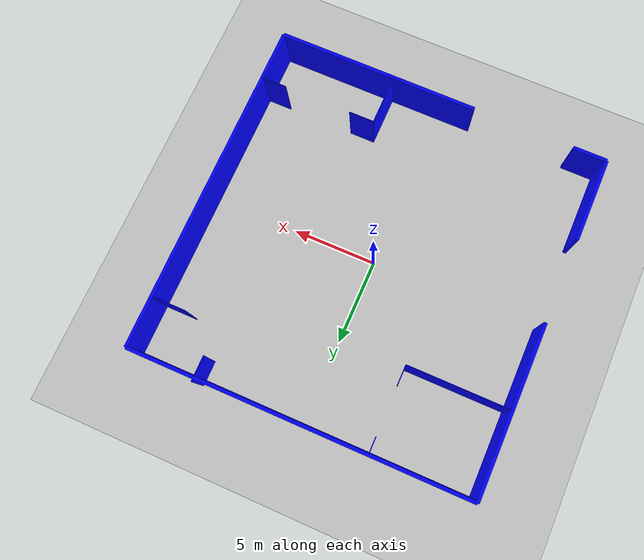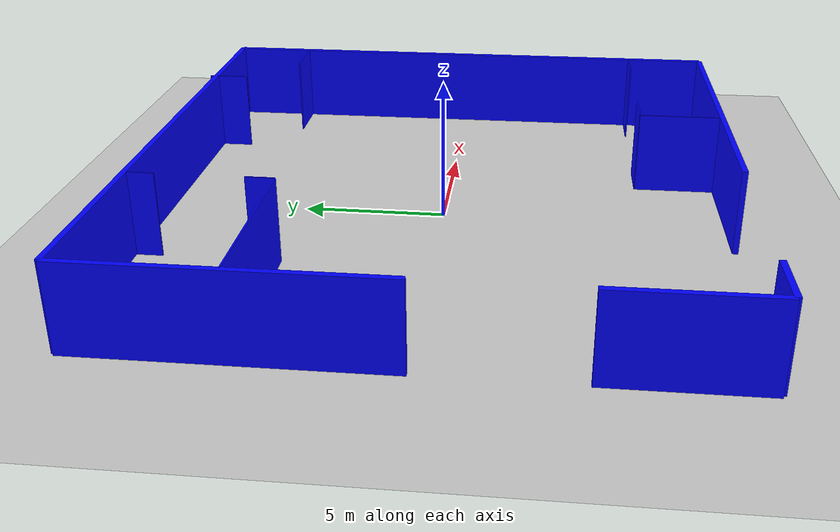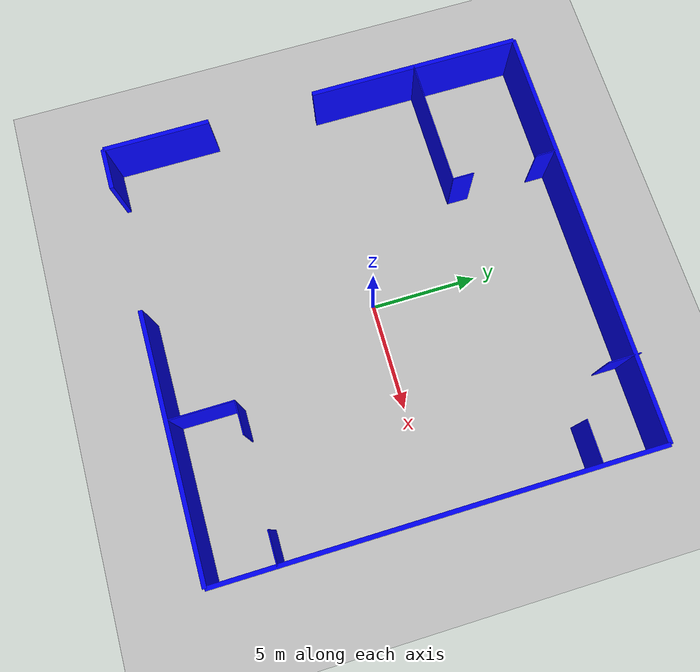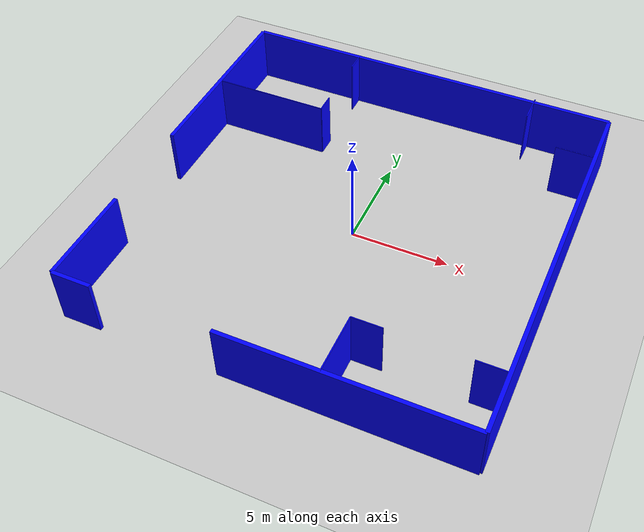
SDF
<sdf version="1.6">
 <world name="my_custom_world">
  <light name="sun" type="directional">
   <pose>0 0 10 0 0 0</pose>
   <diffuse>0.8 0.8 0.8 1</diffuse>
   <specular>0.2 0.2 0.2 1</specular>
   <attenuation>
    <range>1000</range>
    <constant>0.9</constant>
    <linear>0.01</linear>
    <quadratic>0.001</quadratic>
   </attenuation>
   <direction>-0.5 0.1 -0.9</direction>
  </light>
  <model name="ground_plane">
   <static>true</static>
   <link name="link">
    <collision name="collision">
     <geometry><plane><normal>0 0 1</normal><size>500 500</size></plane></geometry>
    </collision>
    <visual name="visual">
     <geometry><plane><normal>0 0 1</normal><size>500 500</size></plane></geometry>
     <material>
      <ambient>0.8 0.8 0.8 1</ambient>
      <diffuse>0.8 0.8 0.8 1</diffuse>
      <specular>0.8 0.8 0.8 1</specular>
     </material>
    </visual>
   </link>
  </model>
  <model name="wall_11">
   <static>true</static>
   <pose>-9 -10 1.5 0 0 0</pose>
   <link name="link">
    <collision name="collision"><geometry><box><size>2.0 0.2 3.0</size></box></geometry></collision>
    <visual name="visual">
     <geometry><box><size>2.0 0.2 3.0</size></box></geometry>
     <material>
      <ambient>0.0 0.0 1.0 1</ambient>
      <diffuse>0.0 0.0 1.0 1</diffuse>
      <specular>0.1 0.1 0.1 1</specular>
     </material>
    </visual>
   </link>
  </model>
  <model name="wall_12">
   <static>true</static>
   <pose>4 -10 1.5 0 0 0</pose>
   <link name="link">
    <collision name="collision"><geometry><box><size>12.0 0.2 3.0</size></box></geometry></collision>
    <visual name="visual">
     <geometry><box><size>12.0 0.2 3.0</size></box></geometry>
     <material>
      <ambient>0.0 0.0 1.0 1</ambient>
      <diffuse>0.0 0.0 1.0 1</diffuse>
      <specular>0.1 0.1 0.1 1</specular>
     </material>
    </visual>
   </link>
  </model>
  <model name="wall_21">
   <static>true</static>
   <pose>-10 -7.5 1.5 0 0 1.5708</pose>
   <link name="link">
    <collision name="collision"><geometry><box><size>5.0 0.2 3.0</size></box></geometry></collision>
    <visual name="visual">
     <geometry><box><size>5.0 0.2 3.0</size></box></geometry>
     <material>
      <ambient>0.0 0.0 1.0 1</ambient>
      <diffuse>0.0 0.0 1.0 1</diffuse>
      <specular>0.1 0.1 0.1 1</specular>
     </material>
    </visual>
   </link>
  </model>
  <model name="wall_22">
   <static>true</static>
   <pose>-10 5 1.5 0 0 1.5708</pose>
   <link name="link">
    <collision name="collision"><geometry><box><size>10.0 0.2 3.0</size></box></geometry></collision>
    <visual name="visual">
     <geometry><box><size>10.0 0.2 3.0</size></box></geometry>
     <material>
      <ambient>0.0 0.0 1.0 1</ambient>
      <diffuse>0.0 0.0 1.0 1</diffuse>
      <specular>0.1 0.1 0.1 1</specular>
     </material>
    </visual>
   </link>
  </model>
  <model name="wall_3">
   <static>true</static>
   <pose>0 10 1.5 0 0 0</pose>
   <link name="link">
    <collision name="collision"><geometry><box><size>20.0 0.2 3.0</size></box></geometry></collision>
    <visual name="visual">
     <geometry><box><size>20.0 0.2 3.0</size></box></geometry>
     <material><ambient>0.0 0.0 1.0 1</ambient></material>
    </visual>
   </link>
  </model>
  <model name="wall_4">
   <static>true</static>
   <pose>10 0 1.5 0 0 1.5708</pose>
   <link name="link">
    <collision name="collision"><geometry><box><size>20.0 0.2 3.0</size></box></geometry></collision>
    <visual name="visual">
     <geometry><box><size>20.0 0.2 3.0</size></box></geometry>
     <material><ambient>0.0 0.0 1.0 1</ambient></material>
    </visual>
   </link>
  </model>
  <model name="wall_5">
   <static>true</static>
   <pose>-7 5 1.5 0 0 0</pose>
   <link name="link">
    <collision name="collision"><geometry><box><size>6.0 0.05 3.0</size></box></geometry></collision>
    <visual name="visual">
     <geometry><box><size>6.0 0.05 3.0</size></box></geometry>
     <material>
      <ambient>0.0 0.0 1.0 1</ambient>
      <diffuse>0.0 0.0 1.0 1</diffuse>
      <specular>0.1 0.1 0.1 1</specular>
     </material>
    </visual>
   </link>
  </model>
  <model name="wall_61">
   <static>true</static>
   <pose>-4 5.5 1.5 0 0 1.5708</pose>
   <link name="link">
    <collision name="collision"><geometry><box><size>1.0 0.05 3.0</size></box></geometry></collision>
    <visual name="visual">
     <geometry><box><size>1.0 0.05 3.0</size></box></geometry>
     <material>
      <ambient>0.0 0.0 1.0 1</ambient>
      <diffuse>0.0 0.0 1.0 1</diffuse>
      <specular>0.1 0.1 0.1 1</specular>
     </material>
    </visual>
   </link>
  </model>
  <model name="wall_62">
   <static>true</static>
   <pose>-4 9.5 1.5 0 0 1.5708</pose>
   <link name="link">
    <collision name="collision"><geometry><box><size>1.0 0.05 3.0</size></box></geometry></collision>
    <visual name="visual">
     <geometry><box><size>1.0 0.05 3.0</size></box></geometry>
     <material>
      <ambient>0.0 0.0 1.0 1</ambient>
      <diffuse>0.0 0.0 1.0 1</diffuse>
      <specular>0.1 0.1 0.1 1</specular>
     </material>
    </visual>
   </link>
  </model>
  <model name="wall_71">
   <static>true</static>
   <pose>3.75 -7 1.5 0 0 0</pose>
   <link name="link">
    <collision name="collision"><geometry><box><size>1.5 0.05 3.0</size></box></geometry></collision>
    <visual name="visual">
     <geometry><box><size>1.5 0.05 3.0</size></box></geometry>
     <material>
      <ambient>0.0 0.0 1.0 1</ambient>
      <diffuse>0.0 0.0 1.0 1</diffuse>
      <specular>0.1 0.1 0.1 1</specular>
     </material>
    </visual>
   </link>
  </model>
  <model name="wall_72">
   <static>true</static>
   <pose>9.25 -7 1.5 0 0 0</pose>
   <link name="link">
    <collision name="collision"><geometry><box><size>1.5 0.05 3.0</size></box></geometry></collision>
    <visual name="visual">
     <geometry><box><size>1.5 0.05 3.0</size></box></geometry>
     <material>
      <ambient>0.0 0.0 1.0 1</ambient>
      <diffuse>0.0 0.0 1.0 1</diffuse>
      <specular>0.1 0.1 0.1 1</specular>
     </material>
    </visual>
   </link>
  </model>
  <model name="wall_8">
   <static>true</static>
   <pose>3 -8.5 1.5 0 0 1.5708</pose>
   <link name="link">
    <collision name="collision"><geometry><box><size>3.0 0.05 3.0</size></box></geometry></collision>
    <visual name="visual">
     <geometry><box><size>3.0 0.05 3.0</size></box></geometry>
     <material>
      <ambient>0.0 0.0 1.0 1</ambient>
      <diffuse>0.0 0.0 1.0 1</diffuse>
      <specular>0.1 0.1 0.1 1</specular>
     </material>
    </visual>
   </link>
  </model>
  <model name="wall_9">
   <static>true</static>
   <pose>9 7 1.5 0 0 0</pose>
   <link name="link">
    <collision name="collision"><geometry><box><size>2.0 0.05 3.0</size></box></geometry></collision>
    <visual name="visual">
     <geometry><box><size>2.0 0.05 3.0</size></box></geometry>
     <material>
      <ambient>0.0 0.0 1.0 1</ambient>
      <diffuse>0.0 0.0 1.0 1</diffuse>
      <specular>0.1 0.1 0.1 1</specular>
     </material>
    </visual>
   </link>
  </model>
  <model name="wall_10">
   <static>true</static>
   <pose>6 9.5 1.5 0 0 1.5708</pose>
   <link name="link">
    <collision name="collision"><geometry><box><size>1.5 0.05 3.0</size></box></geometry></collision>
    <visual name="visual">
     <geometry><box><size>1.5 0.05 3.0</size></box></geometry>
     <material>
      <ambient>0.0 0.0 1.0 1</ambient>
      <diffuse>0.0 0.0 1.0 1</diffuse>
      <specular>0.1 0.1 0.1 1</specular>
     </material>
    </visual>
   </link>
  </model>
 </world>
</sdf>
